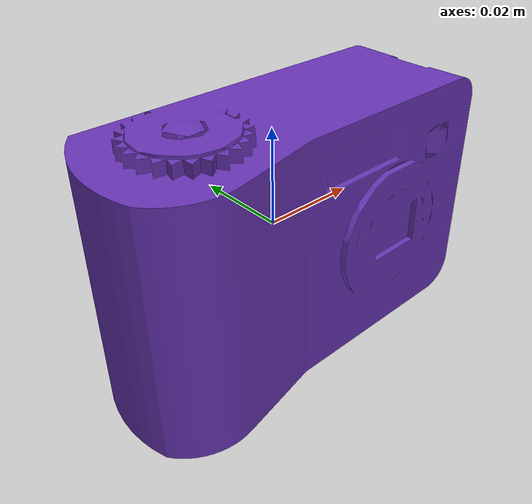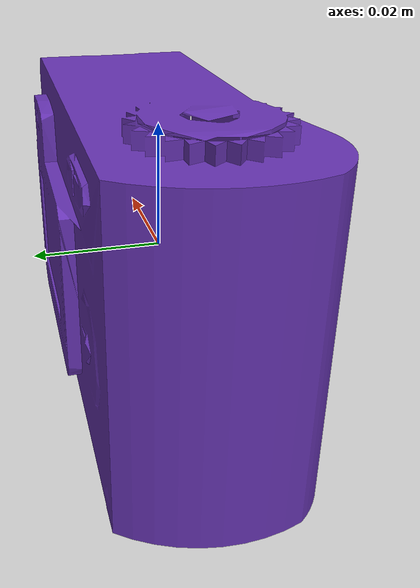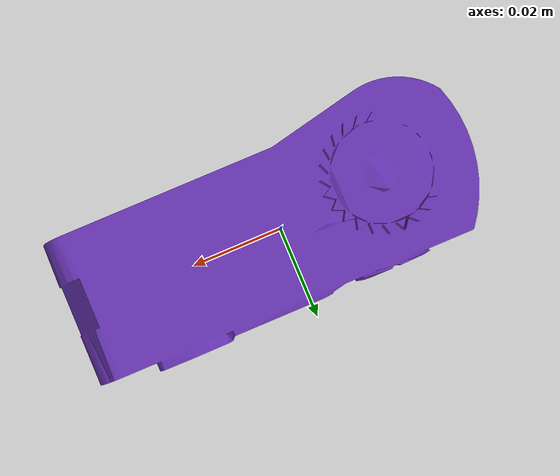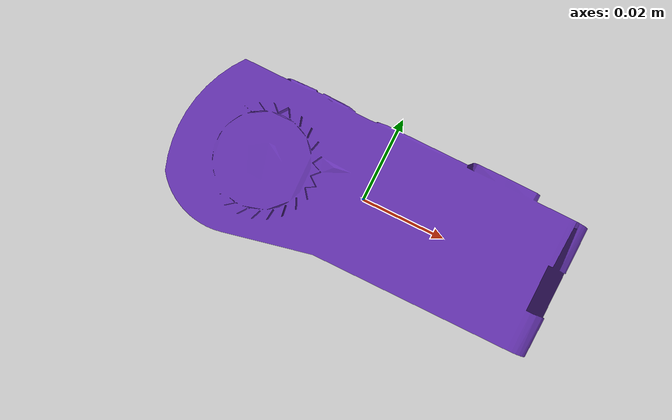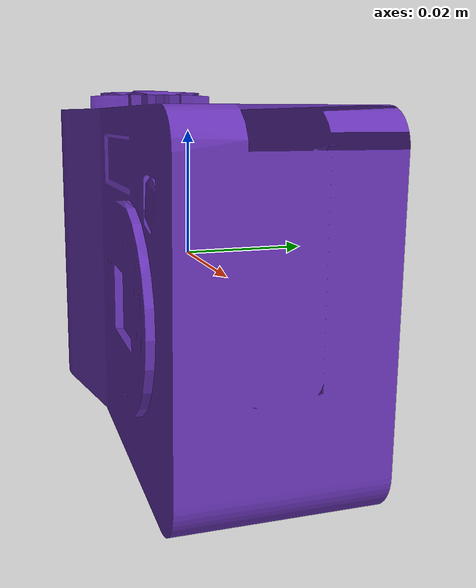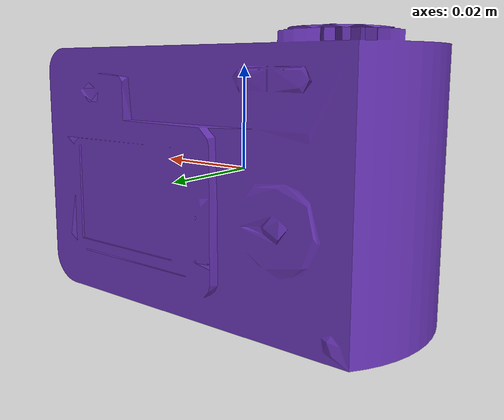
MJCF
<mujoco model="top_watertight_tiny">
  <default>
    <default group="2" type="mesh" contype="0" conaffinity="0">
      <geom group="2" type="mesh" contype="0" conaffinity="0"/>
    </default>
    <default group="3" type="mesh">
      <geom group="3" type="mesh"/>
    </default>
  </default>
  <asset>
    <mesh file="top_watertight_tiny.obj"/>
    <mesh file="top_watertight_tiny_collision_0.obj"/>
    <mesh file="top_watertight_tiny_collision_1.obj"/>
    <mesh file="top_watertight_tiny_collision_2.obj"/>
    <mesh file="top_watertight_tiny_collision_3.obj"/>
    <mesh file="top_watertight_tiny_collision_4.obj"/>
    <mesh file="top_watertight_tiny_collision_5.obj"/>
    <mesh file="top_watertight_tiny_collision_6.obj"/>
    <mesh file="top_watertight_tiny_collision_7.obj"/>
    <mesh file="top_watertight_tiny_collision_8.obj"/>
    <mesh file="top_watertight_tiny_collision_9.obj"/>
    <mesh file="top_watertight_tiny_collision_10.obj"/>
    <mesh file="top_watertight_tiny_collision_11.obj"/>
    <mesh file="top_watertight_tiny_collision_12.obj"/>
    <mesh file="top_watertight_tiny_collision_13.obj"/>
    <mesh file="top_watertight_tiny_collision_14.obj"/>
    <mesh file="top_watertight_tiny_collision_15.obj"/>
    <mesh file="top_watertight_tiny_collision_16.obj"/>
    <mesh file="top_watertight_tiny_collision_17.obj"/>
    <mesh file="top_watertight_tiny_collision_18.obj"/>
    <mesh file="top_watertight_tiny_collision_19.obj"/>
    <mesh file="top_watertight_tiny_collision_20.obj"/>
    <mesh file="top_watertight_tiny_collision_21.obj"/>
    <mesh file="top_watertight_tiny_collision_22.obj"/>
    <mesh file="top_watertight_tiny_collision_23.obj"/>
    <mesh file="top_watertight_tiny_collision_24.obj"/>
    <mesh file="top_watertight_tiny_collision_25.obj"/>
    <mesh file="top_watertight_tiny_collision_26.obj"/>
    <mesh file="top_watertight_tiny_collision_27.obj"/>
    <mesh file="top_watertight_tiny_collision_28.obj"/>
    <mesh file="top_watertight_tiny_collision_29.obj"/>
    <mesh file="top_watertight_tiny_collision_30.obj"/>
    <mesh file="top_watertight_tiny_collision_31.obj"/>
    <mesh file="top_watertight_tiny_collision_32.obj"/>
    <mesh file="top_watertight_tiny_collision_33.obj"/>
    <mesh file="top_watertight_tiny_collision_34.obj"/>
    <mesh file="top_watertight_tiny_collision_35.obj"/>
    <mesh file="top_watertight_tiny_collision_36.obj"/>
    <mesh file="top_watertight_tiny_collision_37.obj"/>
    <mesh file="top_watertight_tiny_collision_38.obj"/>
    <mesh file="top_watertight_tiny_collision_39.obj"/>
    <mesh file="top_watertight_tiny_collision_40.obj"/>
    <mesh file="top_watertight_tiny_collision_41.obj"/>
    <mesh file="top_watertight_tiny_collision_42.obj"/>
    <mesh file="top_watertight_tiny_collision_43.obj"/>
    <mesh file="top_watertight_tiny_collision_44.obj"/>
    <mesh file="top_watertight_tiny_collision_45.obj"/>
    <mesh file="top_watertight_tiny_collision_46.obj"/>
    <mesh file="top_watertight_tiny_collision_47.obj"/>
    <mesh file="top_watertight_tiny_collision_48.obj"/>
    <mesh file="top_watertight_tiny_collision_49.obj"/>
    <mesh file="top_watertight_tiny_collision_50.obj"/>
    <mesh file="top_watertight_tiny_collision_51.obj"/>
    <mesh file="top_watertight_tiny_collision_52.obj"/>
    <mesh file="top_watertight_tiny_collision_53.obj"/>
    <mesh file="top_watertight_tiny_collision_54.obj"/>
    <mesh file="top_watertight_tiny_collision_55.obj"/>
    <mesh file="top_watertight_tiny_collision_56.obj"/>
    <mesh file="top_watertight_tiny_collision_57.obj"/>
    <mesh file="top_watertight_tiny_collision_58.obj"/>
  </asset>
  <worldbody>
    <body name="top_watertight_tiny">
      <freejoint/>
      <geom mesh="top_watertight_tiny" group="2" type="mesh" rgba="0.4 0.2 0.7 1" contype="0" conaffinity="0"/>
      <geom mesh="top_watertight_tiny_collision_0" rgba="0.8344106126748101 0.49935706345202646 0.2879456368098531 1" group="3" type="mesh"/>
      <geom mesh="top_watertight_tiny_collision_1" rgba="0.5405354648293078 0.0004330486120881494 0.37553625260161816 1" group="3" type="mesh"/>
      <geom mesh="top_watertight_tiny_collision_2" rgba="0.7657572008841388 0.6539443466330318 0.40908632211843454 1" group="3" type="mesh"/>
      <geom mesh="top_watertight_tiny_collision_3" rgba="0.07794133213375376 0.7620021625188491 0.4322942479888132 1" group="3" type="mesh"/>
      <geom mesh="top_watertight_tiny_collision_4" rgba="0.5953199881436894 0.19344962836713409 0.6091049228190886 1" group="3" type="mesh"/>
      <geom mesh="top_watertight_tiny_collision_5" rgba="0.8705506888329424 0.2023940030511362 0.9073780942102744 1" group="3" type="mesh"/>
      <geom mesh="top_watertight_tiny_collision_6" rgba="0.7726967001225061 0.8098742107519364 0.7912728740299271 1" group="3" type="mesh"/>
      <geom mesh="top_watertight_tiny_collision_7" rgba="0.9258070962396627 0.17135035774941343 0.6572244025953702 1" group="3" type="mesh"/>
      <geom mesh="top_watertight_tiny_collision_8" rgba="0.48225634346523427 0.8545698699459964 0.4120746942338924 1" group="3" type="mesh"/>
      <geom mesh="top_watertight_tiny_collision_9" rgba="0.30666091090366 0.6915030974694175 0.8176387811751511 1" group="3" type="mesh"/>
      <geom mesh="top_watertight_tiny_collision_10" rgba="0.8812803821968461 0.3812628349816407 0.7520866798122606 1" group="3" type="mesh"/>
      <geom mesh="top_watertight_tiny_collision_11" rgba="0.5745231387704439 0.827408892047963 0.2003919749834182 1" group="3" type="mesh"/>
      <geom mesh="top_watertight_tiny_collision_12" rgba="0.22807773662416053 0.2384076911861921 0.8413268895536796 1" group="3" type="mesh"/>
      <geom mesh="top_watertight_tiny_collision_13" rgba="0.49647094635215316 0.9985694696349804 0.6169036198031551 1" group="3" type="mesh"/>
      <geom mesh="top_watertight_tiny_collision_14" rgba="0.6447137645112715 0.4292393936657207 0.5575739876572072 1" group="3" type="mesh"/>
      <geom mesh="top_watertight_tiny_collision_15" rgba="0.08045589259254537 0.15357391656255992 0.4202565401637577 1" group="3" type="mesh"/>
      <geom mesh="top_watertight_tiny_collision_16" rgba="0.25583004077428806 0.44442571303535006 0.26687736354255975 1" group="3" type="mesh"/>
      <geom mesh="top_watertight_tiny_collision_17" rgba="0.47286384401896586 0.3452169592629223 0.6059916916445522 1" group="3" type="mesh"/>
      <geom mesh="top_watertight_tiny_collision_18" rgba="0.02178220098035788 0.00855448261189784 0.06203962303702115 1" group="3" type="mesh"/>
      <geom mesh="top_watertight_tiny_collision_19" rgba="0.916753821889932 0.009279771805329573 0.05248964949137502 1" group="3" type="mesh"/>
      <geom mesh="top_watertight_tiny_collision_20" rgba="0.6253860898356048 0.4593140633175966 0.6840059574869752 1" group="3" type="mesh"/>
      <geom mesh="top_watertight_tiny_collision_21" rgba="0.47983398438521707 0.7724622406290365 0.9817601471857502 1" group="3" type="mesh"/>
      <geom mesh="top_watertight_tiny_collision_22" rgba="0.4878902913514168 0.14043767521408024 0.45084945431187395 1" group="3" type="mesh"/>
      <geom mesh="top_watertight_tiny_collision_23" rgba="0.656657780210677 0.8286349099187473 0.1619439485208236 1" group="3" type="mesh"/>
      <geom mesh="top_watertight_tiny_collision_24" rgba="0.8717180572376128 0.07512766795485515 0.27750746140272187 1" group="3" type="mesh"/>
      <geom mesh="top_watertight_tiny_collision_25" rgba="0.5267126651685438 0.6562154419306484 0.29265244861510586 1" group="3" type="mesh"/>
      <geom mesh="top_watertight_tiny_collision_26" rgba="0.1735708591859898 0.8158654591422052 0.8342710624284476 1" group="3" type="mesh"/>
      <geom mesh="top_watertight_tiny_collision_27" rgba="0.7030058215665084 0.09721943209183992 0.8205937795381397 1" group="3" type="mesh"/>
      <geom mesh="top_watertight_tiny_collision_28" rgba="0.3929325069000412 0.980564934503359 0.30682631863510834 1" group="3" type="mesh"/>
      <geom mesh="top_watertight_tiny_collision_29" rgba="0.7270055847598392 0.5422847990108204 0.045815814718681236 1" group="3" type="mesh"/>
      <geom mesh="top_watertight_tiny_collision_30" rgba="0.23907159510639453 0.8344757115485504 0.8960709920687503 1" group="3" type="mesh"/>
      <geom mesh="top_watertight_tiny_collision_31" rgba="0.4632310478118856 0.12080159820023684 0.17663212068343392 1" group="3" type="mesh"/>
      <geom mesh="top_watertight_tiny_collision_32" rgba="0.5854222566309486 0.3637135000799804 0.45074582605111846 1" group="3" type="mesh"/>
      <geom mesh="top_watertight_tiny_collision_33" rgba="0.7771572484583378 0.5244375972061696 0.6254855670571168 1" group="3" type="mesh"/>
      <geom mesh="top_watertight_tiny_collision_34" rgba="0.969173061778164 0.48699528206440545 0.6103978532964777 1" group="3" type="mesh"/>
      <geom mesh="top_watertight_tiny_collision_35" rgba="0.14442893722340544 0.9108408260925052 0.9509721754839677 1" group="3" type="mesh"/>
      <geom mesh="top_watertight_tiny_collision_36" rgba="0.9743117675059368 0.9709553074730147 0.1735288388827726 1" group="3" type="mesh"/>
      <geom mesh="top_watertight_tiny_collision_37" rgba="0.7348466246213853 0.0076571370347835455 0.6800628497753485 1" group="3" type="mesh"/>
      <geom mesh="top_watertight_tiny_collision_38" rgba="0.8585677899470864 0.7437812731647678 0.8460056012131626 1" group="3" type="mesh"/>
      <geom mesh="top_watertight_tiny_collision_39" rgba="0.8529105820147969 0.7003058404287139 0.8946897541179486 1" group="3" type="mesh"/>
      <geom mesh="top_watertight_tiny_collision_40" rgba="0.2697235282568795 0.8421345908560035 0.6927294778135631 1" group="3" type="mesh"/>
      <geom mesh="top_watertight_tiny_collision_41" rgba="0.407789275951178 0.610738857624795 0.5525862008185075 1" group="3" type="mesh"/>
      <geom mesh="top_watertight_tiny_collision_42" rgba="0.26083336003259494 0.8782723469230372 0.7162871179282592 1" group="3" type="mesh"/>
      <geom mesh="top_watertight_tiny_collision_43" rgba="0.039413214248453676 0.69321377840268 0.3655771980793261 1" group="3" type="mesh"/>
      <geom mesh="top_watertight_tiny_collision_44" rgba="0.47297381802965277 0.37569714010647903 0.24114628727481746 1" group="3" type="mesh"/>
      <geom mesh="top_watertight_tiny_collision_45" rgba="0.1880367168145064 0.41387331524801574 0.6427905435776957 1" group="3" type="mesh"/>
      <geom mesh="top_watertight_tiny_collision_46" rgba="0.9030210603667329 0.3295337804132603 0.911006255171311 1" group="3" type="mesh"/>
      <geom mesh="top_watertight_tiny_collision_47" rgba="0.5705748156191636 0.7501414566728016 0.9827295987548824 1" group="3" type="mesh"/>
      <geom mesh="top_watertight_tiny_collision_48" rgba="0.45563820181999803 0.1475019929103345 0.4726608776042498 1" group="3" type="mesh"/>
      <geom mesh="top_watertight_tiny_collision_49" rgba="0.215218848578704 0.7330513213232264 0.2816148591344916 1" group="3" type="mesh"/>
      <geom mesh="top_watertight_tiny_collision_50" rgba="0.5861497415381439 0.042661615729316926 0.34243512943449816 1" group="3" type="mesh"/>
      <geom mesh="top_watertight_tiny_collision_51" rgba="0.3104764114167333 0.7278116315258092 0.5488854429282544 1" group="3" type="mesh"/>
      <geom mesh="top_watertight_tiny_collision_52" rgba="0.7415635410367902 0.09139602225888488 0.34302792033598806 1" group="3" type="mesh"/>
      <geom mesh="top_watertight_tiny_collision_53" rgba="0.9504086658569546 0.07266513746312453 0.002139669227086083 1" group="3" type="mesh"/>
      <geom mesh="top_watertight_tiny_collision_54" rgba="0.2618533438980394 0.47672403641065364 0.45055775164351297 1" group="3" type="mesh"/>
      <geom mesh="top_watertight_tiny_collision_55" rgba="0.6556920611735294 0.13366976163832212 0.7987386803123976 1" group="3" type="mesh"/>
      <geom mesh="top_watertight_tiny_collision_56" rgba="0.3510950652827276 0.6977591131641768 0.8269820185056036 1" group="3" type="mesh"/>
      <geom mesh="top_watertight_tiny_collision_57" rgba="0.11735593783515141 0.48842838308513126 0.8566449662595669 1" group="3" type="mesh"/>
      <geom mesh="top_watertight_tiny_collision_58" rgba="0.7052736278161098 0.9038251059112327 0.9558062186302666 1" group="3" type="mesh"/>
    </body>
  </worldbody>
</mujoco>
